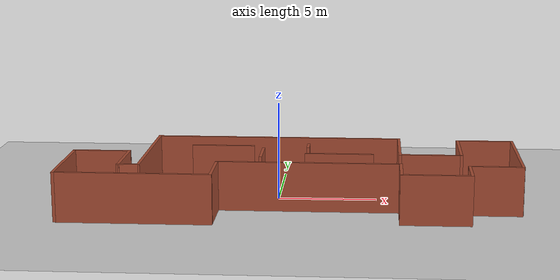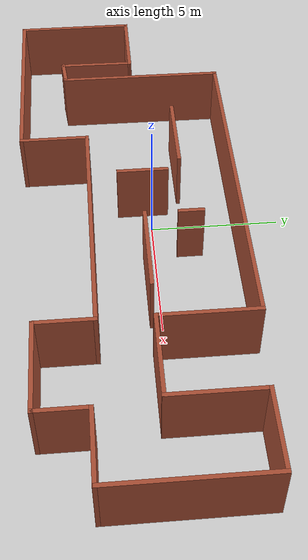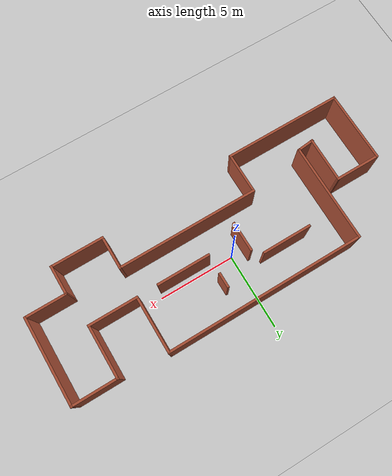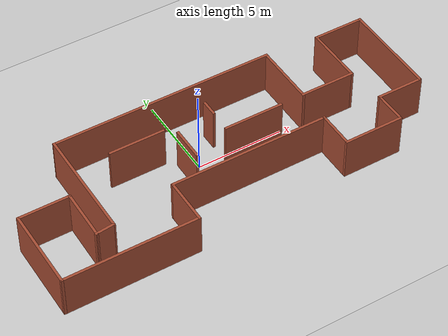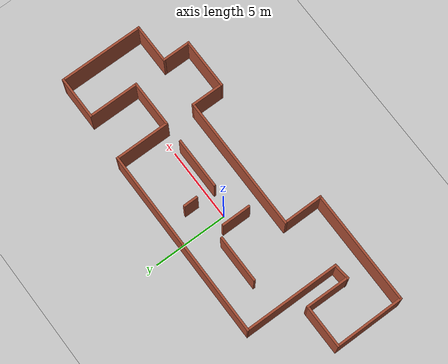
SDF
<sdf version="1.7">
 <world name="default">
  <light name="sun" type="directional">
   <pose>0 0 10 0 -0 0</pose>
   <diffuse>0.8 0.8 0.8 1</diffuse>
   <specular>0.2 0.2 0.2 1</specular>
   <attenuation>
    <range>1000</range>
    <constant>0.9</constant>
    <linear>0.01</linear>
    <quadratic>0.001</quadratic>
   </attenuation>
   <direction>-0.5 0.1 -0.9</direction>
   <spot><inner_angle>0</inner_angle><outer_angle>0</outer_angle><falloff>0</falloff></spot>
  </light>
  <model name="ground_plane">
   <static>1</static>
   <link name="link">
    <collision name="collision">
     <geometry><plane><normal>0 0 1</normal><size>100 100</size></plane></geometry>
     <surface>
      <contact><collide_bitmask>65535</collide_bitmask></contact>
      <friction><ode><mu>100</mu><mu2>50</mu2></ode></friction>
     </surface>
    </collision>
    <visual name="visual">
     <cast_shadows>0</cast_shadows>
     <geometry><plane><normal>0 0 1</normal><size>100 100</size></plane></geometry>
     <material>
      <script><uri>file://media/materials/scripts/gazebo.material</uri><name>Gazebo/Grey</name></script>
     </material>
    </visual>
   </link>
  </model>
  <gravity>0 0 -9.8</gravity>
  <magnetic_field>6e-06 2.3e-05 -4.2e-05</magnetic_field>
  <atmosphere type="adiabatic"/>
  <physics type="ode">
   <max_step_size>0.001</max_step_size>
   <real_time_factor>1</real_time_factor>
   <real_time_update_rate>1000</real_time_update_rate>
  </physics>
  <scene><ambient>0.4 0.4 0.4 1</ambient><background>0.7 0.7 0.7 1</background><shadows>1</shadows></scene>
  <audio><device>default</device></audio>
  <spherical_coordinates>
   <surface_model>EARTH_WGS84</surface_model>
   <latitude_deg>0</latitude_deg>
   <longitude_deg>0</longitude_deg>
   <elevation>0</elevation>
   <heading_deg>0</heading_deg>
  </spherical_coordinates>
  <model name="my_building">
   <pose>0.809508 -0.860787 0 0 -0 0</pose>
   <link name="Wall_10">
    <collision name="Wall_10_Collision">
     <geometry><box><size>5.75 0.15 2.5</size></box></geometry>
     <pose>0 0 1.25 0 -0 0</pose>
    </collision>
    <visual name="Wall_10_Visual">
     <pose>0 0 1.25 0 -0 0</pose>
     <geometry><box><size>5.75 0.15 2.5</size></box></geometry>
     <material>
      <script><uri>file://media/materials/scripts/gazebo.material</uri><name>Gazebo/Bricks</name></script>
      <ambient>1 1 1 1</ambient>
     </material>
     <meta><layer>0</layer></meta>
    </visual>
    <pose>11.325 1.04977 0 0 -0 -1.5708</pose>
   </link>
   <link name="Wall_11">
    <collision name="Wall_11_Collision">
     <geometry><box><size>2.75 0.15 2.5</size></box></geometry>
     <pose>0 0 1.25 0 -0 0</pose>
    </collision>
    <visual name="Wall_11_Visual">
     <pose>0 0 1.25 0 -0 0</pose>
     <geometry><box><size>2.75 0.15 2.5</size></box></geometry>
     <material>
      <script><uri>file://media/materials/scripts/gazebo.material</uri><name>Gazebo/Bricks</name></script>
      <ambient>1 1 1 1</ambient>
     </material>
     <meta><layer>0</layer></meta>
    </visual>
    <pose>10.025 -1.75023 0 0 -0 3.14159</pose>
   </link>
   <link name="Wall_12">
    <collision name="Wall_12_Collision">
     <geometry><box><size>2 0.15 2.5</size></box></geometry>
     <pose>0 0 1.25 0 -0 0</pose>
    </collision>
    <visual name="Wall_12_Visual">
     <pose>0 0 1.25 0 -0 0</pose>
     <geometry><box><size>2 0.15 2.5</size></box></geometry>
     <material>
      <script><uri>file://media/materials/scripts/gazebo.material</uri><name>Gazebo/Bricks</name></script>
      <ambient>1 1 1 1</ambient>
     </material>
     <meta><layer>0</layer></meta>
    </visual>
    <pose>8.725 -2.67523 0 0 -0 -1.5708</pose>
   </link>
   <link name="Wall_13">
    <collision name="Wall_13_Collision">
     <geometry><box><size>3.5 0.15 2.5</size></box></geometry>
     <pose>0 0 1.25 0 -0 0</pose>
    </collision>
    <visual name="Wall_13_Visual">
     <pose>0 0 1.25 0 -0 0</pose>
     <geometry><box><size>3.5 0.15 2.5</size></box></geometry>
     <material>
      <script><uri>file://media/materials/scripts/gazebo.material</uri><name>Gazebo/Bricks</name></script>
      <ambient>1 1 1 1</ambient>
     </material>
     <meta><layer>0</layer></meta>
    </visual>
    <pose>7.05 -3.60024 0 0 -0 3.14159</pose>
   </link>
   <link name="Wall_14">
    <collision name="Wall_14_Collision">
     <geometry><box><size>2.25 0.15 2.5</size></box></geometry>
     <pose>0 0 1.25 0 -0 0</pose>
    </collision>
    <visual name="Wall_14_Visual">
     <pose>0 0 1.25 0 -0 0</pose>
     <geometry><box><size>2.25 0.15 2.5</size></box></geometry>
     <material>
      <script><uri>file://media/materials/scripts/gazebo.material</uri><name>Gazebo/Bricks</name></script>
      <ambient>1 1 1 1</ambient>
     </material>
     <meta><layer>0</layer></meta>
    </visual>
    <pose>5.375 -2.55023 0 0 -0 1.5708</pose>
   </link>
   <link name="Wall_15">
    <collision name="Wall_15_Collision">
     <geometry><box><size>9.25 0.15 2.5</size></box></geometry>
     <pose>0 0 1.25 0 -0 0</pose>
    </collision>
    <visual name="Wall_15_Visual">
     <pose>0 0 1.25 0 -0 0</pose>
     <geometry><box><size>9.25 0.15 2.5</size></box></geometry>
     <material>
      <script><uri>file://media/materials/scripts/gazebo.material</uri><name>Gazebo/Bricks</name></script>
      <ambient>1 1 1 1</ambient>
     </material>
     <meta><layer>0</layer></meta>
    </visual>
    <pose>0.825 -1.50023 0 0 -0 3.14159</pose>
   </link>
   <link name="Wall_19">
    <collision name="Wall_19_Collision">
     <geometry><box><size>2.75 0.15 2.5</size></box></geometry>
     <pose>0 0 1.25 0 -0 0</pose>
    </collision>
    <visual name="Wall_19_Visual">
     <pose>0 0 1.25 0 -0 0</pose>
     <geometry><box><size>2.75 0.15 2.5</size></box></geometry>
     <material>
      <script><uri>file://media/materials/scripts/gazebo.material</uri><name>Gazebo/Bricks</name></script>
      <ambient>1 1 1 1</ambient>
     </material>
     <meta><layer>0</layer></meta>
    </visual>
    <pose>-3.725 -2.80023 0 0 -0 -1.5708</pose>
   </link>
   <link name="Wall_20">
    <collision name="Wall_20_Collision">
     <geometry><box><size>7.75 0.15 2.5</size></box></geometry>
     <pose>0 0 1.25 0 -0 0</pose>
    </collision>
    <visual name="Wall_20_Visual">
     <pose>0 0 1.25 0 -0 0</pose>
     <geometry><box><size>7.75 0.15 2.5</size></box></geometry>
     <material>
      <script><uri>file://media/materials/scripts/gazebo.material</uri><name>Gazebo/Bricks</name></script>
      <ambient>1 1 1 1</ambient>
     </material>
     <meta><layer>0</layer></meta>
    </visual>
    <pose>-7.525 -4.10023 0 0 -0 3.14159</pose>
   </link>
   <link name="Wall_21">
    <collision name="Wall_21_Collision">
     <geometry><box><size>4.75 0.15 2.5</size></box></geometry>
     <pose>0 0 1.25 0 -0 0</pose>
    </collision>
    <visual name="Wall_21_Visual">
     <pose>0 0 1.25 0 -0 0</pose>
     <geometry><box><size>4.75 0.15 2.5</size></box></geometry>
     <material>
      <script><uri>file://media/materials/scripts/gazebo.material</uri><name>Gazebo/Bricks</name></script>
      <ambient>1 1 1 1</ambient>
     </material>
     <meta><layer>0</layer></meta>
    </visual>
    <pose>-11.325 -1.80024 0 0 -0 1.5708</pose>
   </link>
   <link name="Wall_22">
    <collision name="Wall_22_Collision">
     <geometry><box><size>3 0.15 2.5</size></box></geometry>
     <pose>0 0 1.25 0 -0 0</pose>
    </collision>
    <visual name="Wall_22_Visual">
     <pose>0 0 1.25 0 -0 0</pose>
     <geometry><box><size>3 0.15 2.5</size></box></geometry>
     <material>
      <script><uri>file://media/materials/scripts/gazebo.material</uri><name>Gazebo/Bricks</name></script>
      <ambient>1 1 1 1</ambient>
     </material>
     <meta><layer>0</layer></meta>
    </visual>
    <pose>-9.9 0.499765 0 0 -0 0</pose>
   </link>
   <link name="Wall_23">
    <collision name="Wall_23_Collision">
     <geometry><box><size>3.02825 0.15 2.5</size></box></geometry>
     <pose>0 0 1.25 0 -0 0</pose>
    </collision>
    <visual name="Wall_23_Visual">
     <pose>0 0 1.25 0 -0 0</pose>
     <geometry><box><size>3.02825 0.15 2.5</size></box></geometry>
     <material>
      <script><uri>file://media/materials/scripts/gazebo.material</uri><name>Gazebo/Bricks</name></script>
      <ambient>1 1 1 1</ambient>
     </material>
     <meta><layer>0</layer></meta>
    </visual>
    <pose>-8.49249 -0.939119 0 0 -0 -1.58295</pose>
   </link>
   <link name="Wall_24">
    <collision name="Wall_24_Collision">
     <geometry><box><size>1.15499 0.15 2.5</size></box></geometry>
     <pose>0 0 1.25 0 -0 0</pose>
    </collision>
    <visual name="Wall_24_Visual">
     <pose>0 0 1.25 0 -0 0</pose>
     <geometry><box><size>1.15499 0.15 2.5</size></box></geometry>
     <material>
      <script><uri>file://media/materials/scripts/gazebo.material</uri><name>Gazebo/Bricks</name></script>
      <ambient>1 1 1 1</ambient>
     </material>
     <meta><layer>0</layer></meta>
    </visual>
    <pose>-8.02747 -2.328 0 0 -0 0.099669</pose>
   </link>
   <link name="Wall_26">
    <collision name="Wall_26_Collision">
     <geometry><box><size>3.25 0.15 2.5</size></box></geometry>
     <pose>0 0 1.25 0 -0 0</pose>
    </collision>
    <visual name="Wall_26_Visual">
     <pose>0 0 1.25 0 -0 0</pose>
     <geometry><box><size>3.25 0.15 2.5</size></box></geometry>
     <material>
      <script><uri>file://media/materials/scripts/gazebo.material</uri><name>Gazebo/Bricks</name></script>
      <ambient>1 1 1 1</ambient>
     </material>
     <meta><layer>0</layer></meta>
    </visual>
    <pose>-3.79121 2.04204 0 0 -0 0</pose>
   </link>
   <link name="Wall_28">
    <collision name="Wall_28_Collision">
     <geometry><box><size>2 0.15 2.5</size></box></geometry>
     <pose>0 0 1.25 0 -0 0</pose>
    </collision>
    <visual name="Wall_28_Visual">
     <pose>0 0 1.25 0 -0 0</pose>
     <geometry><box><size>2 0.15 2.5</size></box></geometry>
     <material>
      <script><uri>file://media/materials/scripts/gazebo.material</uri><name>Gazebo/Bricks</name></script>
      <ambient>1 1 1 1</ambient>
     </material>
     <meta><layer>0</layer></meta>
    </visual>
    <pose>-1.65081 0.570904 0 0 -0 1.5708</pose>
   </link>
   <link name="Wall_30">
    <collision name="Wall_30_Collision">
     <geometry><box><size>1 0.15 2.5</size></box></geometry>
     <pose>0 0 1.25 0 -0 0</pose>
    </collision>
    <visual name="Wall_30_Visual">
     <pose>0 0 1.25 0 -0 0</pose>
     <geometry><box><size>1 0.15 2.5</size></box></geometry>
     <material>
      <script><uri>file://media/materials/scripts/gazebo.material</uri><name>Gazebo/Bricks</name></script>
      <ambient>1 1 1 1</ambient>
     </material>
     <meta><layer>0</layer></meta>
    </visual>
    <pose>0.640389 2.2117 0 0 -0 -1.5708</pose>
   </link>
   <link name="Wall_32">
    <collision name="Wall_32_Collision">
     <geometry><box><size>3.5 0.15 2.5</size></box></geometry>
     <pose>0 0 1.25 0 -0 0</pose>
    </collision>
    <visual name="Wall_32_Visual">
     <pose>0 0 1.25 0 -0 0</pose>
     <geometry><box><size>3.5 0.15 2.5</size></box></geometry>
     <material>
      <script><uri>file://media/materials/scripts/gazebo.material</uri><name>Gazebo/Bricks</name></script>
      <ambient>1 1 1 1</ambient>
     </material>
     <meta><layer>0</layer></meta>
    </visual>
    <pose>2.2979 0.485427 0 0 -0 0</pose>
   </link>
   <link name="Wall_4">
    <collision name="Wall_4_Collision">
     <geometry><box><size>6.52798 0.15 2.5</size></box></geometry>
     <pose>0 0 1.25 0 -0 0</pose>
    </collision>
    <visual name="Wall_4_Visual">
     <pose>0 0 1.25 0 -0 0</pose>
     <geometry><box><size>6.52798 0.15 2.5</size></box></geometry>
     <material>
      <script><uri>file://media/materials/scripts/gazebo.material</uri><name>Gazebo/Bricks</name></script>
      <ambient>1 1 1 1</ambient>
     </material>
     <meta><layer>0</layer></meta>
    </visual>
    <pose>-7.49249 0.910881 0 0 -0 1.56531</pose>
   </link>
   <link name="Wall_5">
    <collision name="Wall_5_Collision">
     <geometry><box><size>13 0.15 2.5</size></box></geometry>
     <pose>0 0 1.25 0 -0 0</pose>
    </collision>
    <visual name="Wall_5_Visual">
     <pose>0 0 1.25 0 -0 0</pose>
     <geometry><box><size>13 0.15 2.5</size></box></geometry>
     <material>
      <script><uri>file://media/materials/scripts/gazebo.material</uri><name>Gazebo/Bricks</name></script>
      <ambient>1 1 1 1</ambient>
     </material>
     <meta><layer>0</layer></meta>
    </visual>
    <pose>-1.05 4.09976 0 0 -0 0</pose>
   </link>
   <link name="Wall_6">
    <collision name="Wall_6_Collision">
     <geometry><box><size>3.75 0.15 2.5</size></box></geometry>
     <pose>0 0 1.25 0 -0 0</pose>
    </collision>
    <visual name="Wall_6_Visual">
     <pose>0 0 1.25 0 -0 0</pose>
     <geometry><box><size>3.75 0.15 2.5</size></box></geometry>
     <material>
      <script><uri>file://media/materials/scripts/gazebo.material</uri><name>Gazebo/Bricks</name></script>
      <ambient>1 1 1 1</ambient>
     </material>
     <meta><layer>0</layer></meta>
    </visual>
    <pose>5.375 2.29976 0 0 -0 -1.5708</pose>
   </link>
   <link name="Wall_7">
    <collision name="Wall_7_Collision">
     <geometry><box><size>3.25 0.15 2.5</size></box></geometry>
     <pose>0 0 1.25 0 -0 0</pose>
    </collision>
    <visual name="Wall_7_Visual">
     <pose>0 0 1.25 0 -0 0</pose>
     <geometry><box><size>3.25 0.15 2.5</size></box></geometry>
     <material>
      <script><uri>file://media/materials/scripts/gazebo.material</uri><name>Gazebo/Bricks</name></script>
      <ambient>1 1 1 1</ambient>
     </material>
     <meta><layer>0</layer></meta>
    </visual>
    <pose>6.925 0.499765 0 0 -0 0</pose>
   </link>
   <link name="Wall_8">
    <collision name="Wall_8_Collision">
     <geometry><box><size>3.5 0.15 2.5</size></box></geometry>
     <pose>0 0 1.25 0 -0 0</pose>
    </collision>
    <visual name="Wall_8_Visual">
     <pose>0 0 1.25 0 -0 0</pose>
     <geometry><box><size>3.5 0.15 2.5</size></box></geometry>
     <material>
      <script><uri>file://media/materials/scripts/gazebo.material</uri><name>Gazebo/Bricks</name></script>
      <ambient>1 1 1 1</ambient>
     </material>
     <meta><layer>0</layer></meta>
    </visual>
    <pose>8.475 2.17476 0 0 -0 1.5708</pose>
   </link>
   <link name="Wall_9">
    <collision name="Wall_9_Collision">
     <geometry><box><size>3 0.15 2.5</size></box></geometry>
     <pose>0 0 1.25 0 -0 0</pose>
    </collision>
    <visual name="Wall_9_Visual">
     <pose>0 0 1.25 0 -0 0</pose>
     <geometry><box><size>3 0.15 2.5</size></box></geometry>
     <material>
      <script><uri>file://media/materials/scripts/gazebo.material</uri><name>Gazebo/Bricks</name></script>
      <ambient>1 1 1 1</ambient>
     </material>
     <meta><layer>0</layer></meta>
    </visual>
    <pose>9.9 3.84977 0 0 -0 0</pose>
   </link>
   <static>1</static>
  </model>
 </world>
</sdf>
